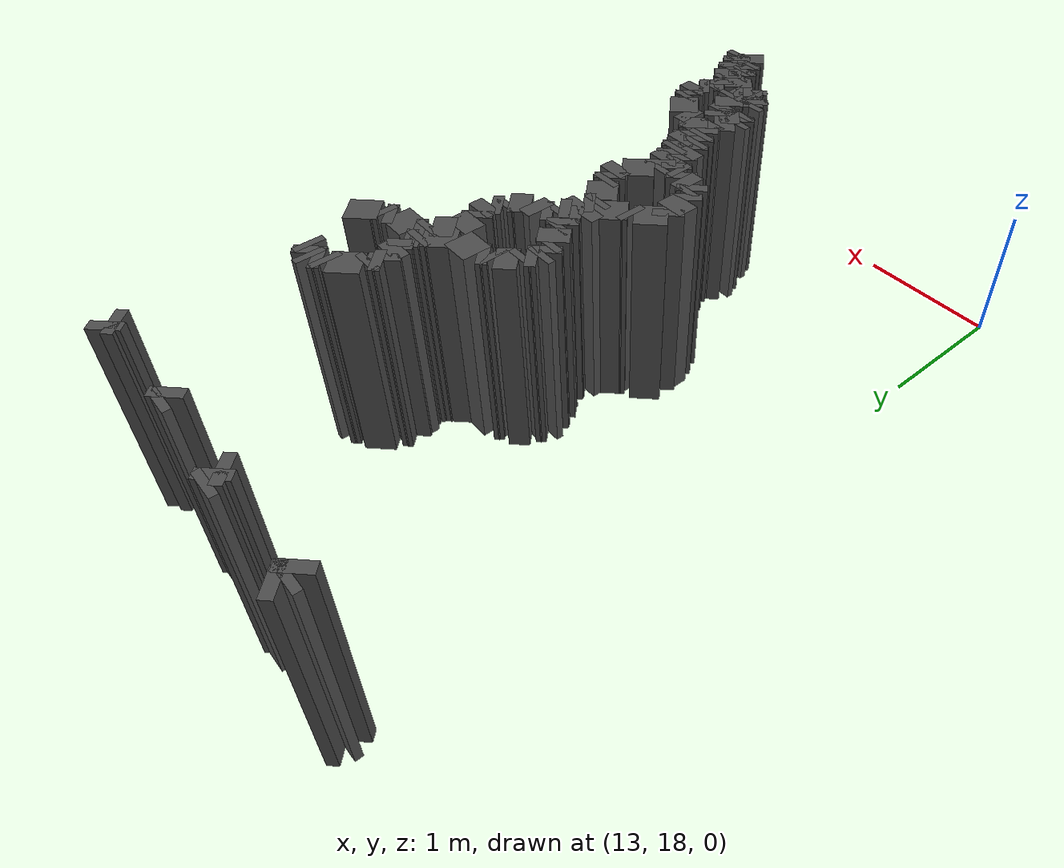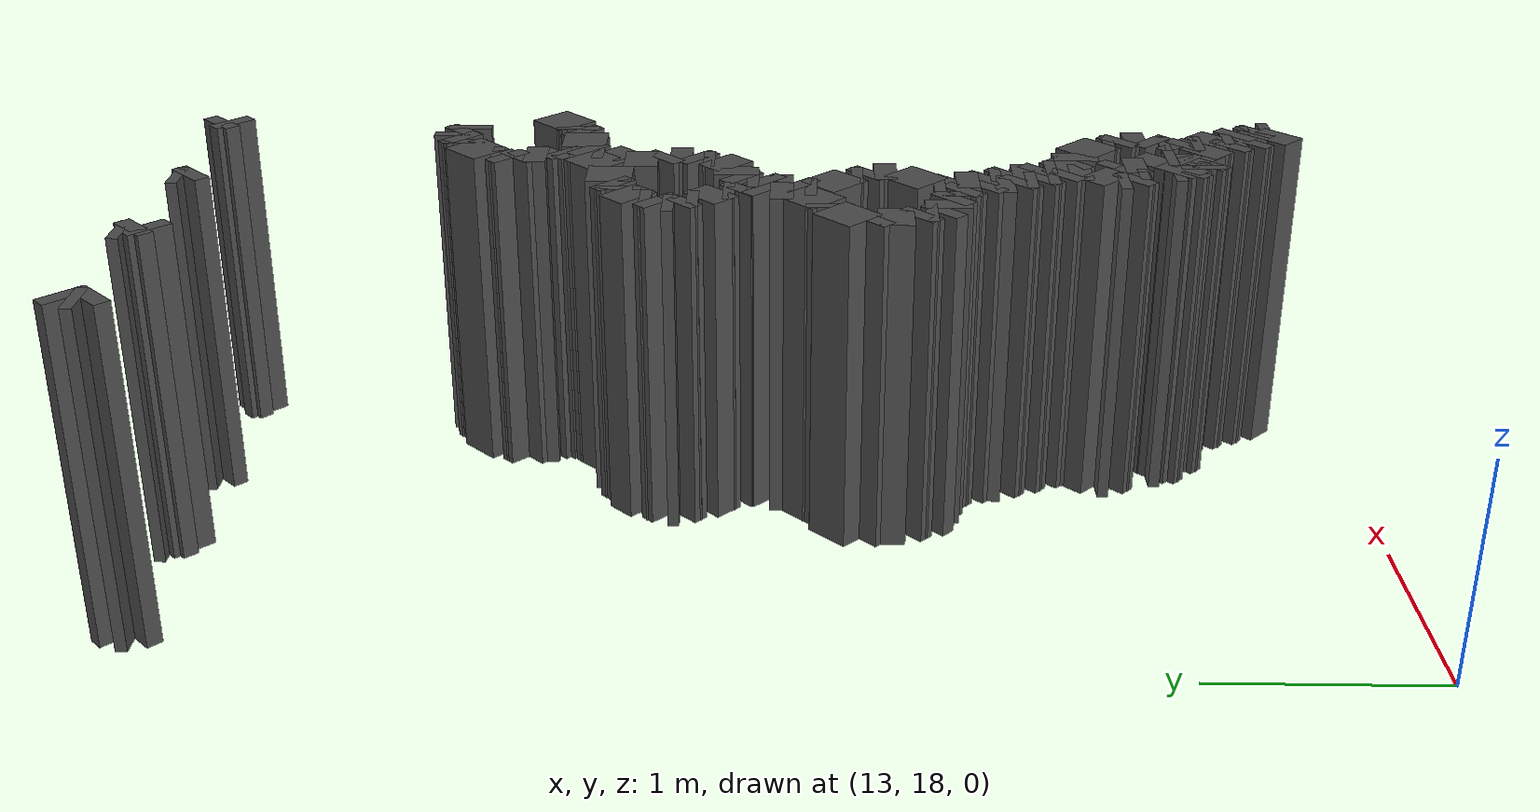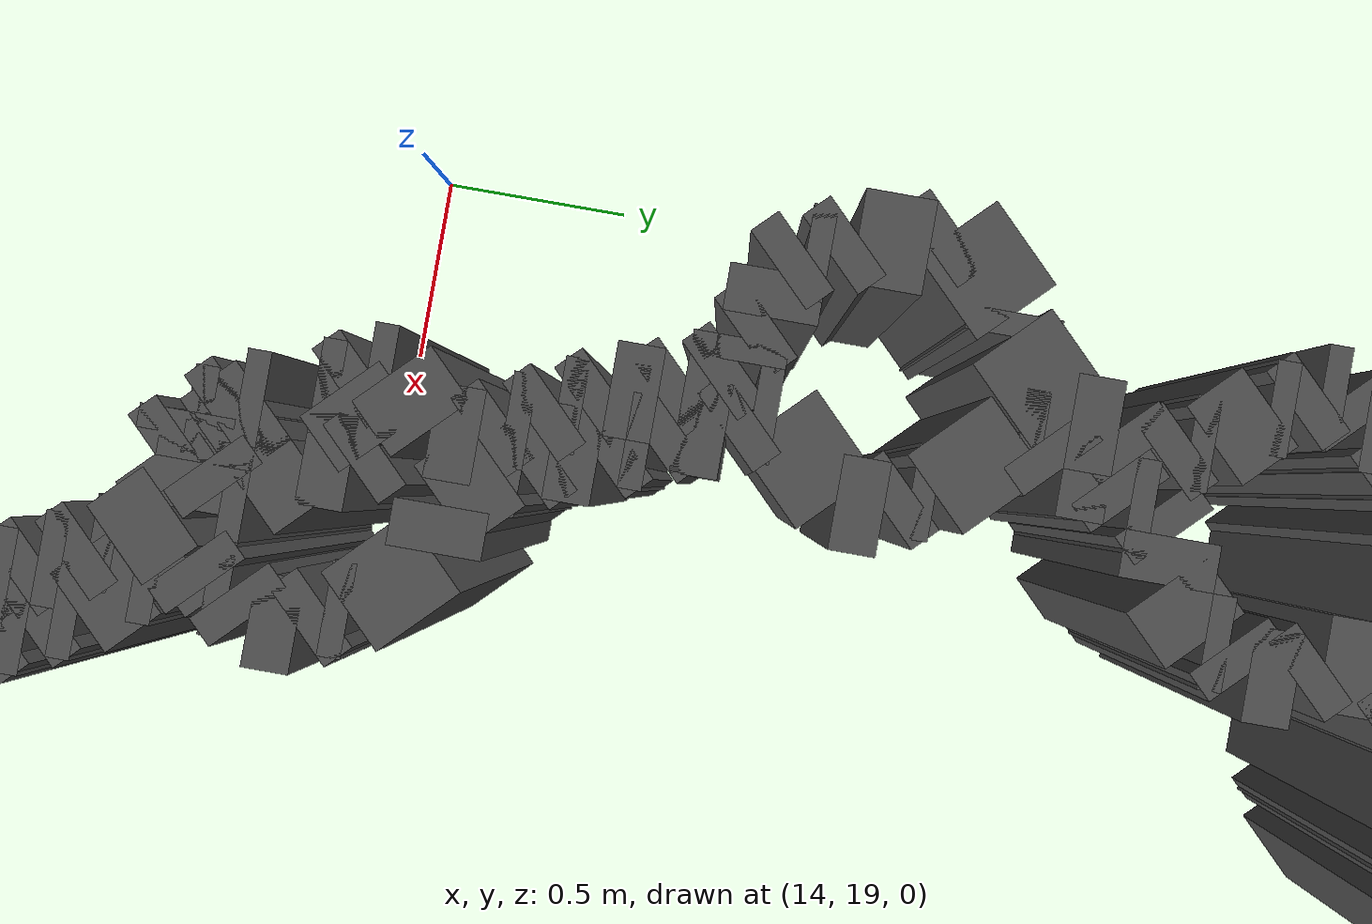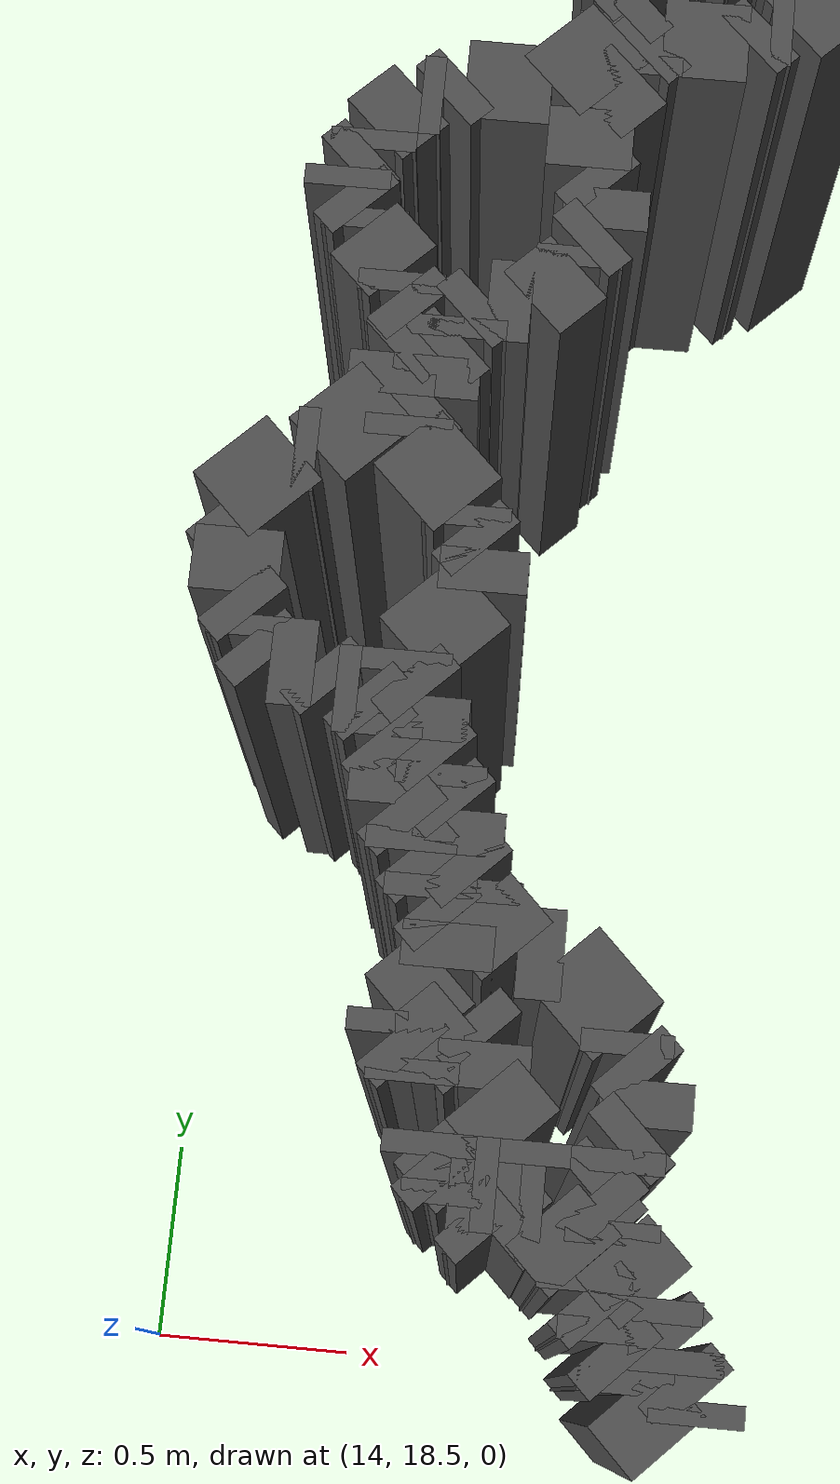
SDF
<sdf version="1.9">
 <model name="generated_walls">
  <static>true</static>
  <link name="wall_83_0">
   <pose>14.625 23.225 0.75 0 0 2.356</pose>
   <collision name="collision"><geometry><box><size>0.071 0.2 1.5</size></box></geometry></collision>
   <visual name="visual">
    <geometry><box><size>0.071 0.2 1.5</size></box></geometry>
    <material><ambient>0.3 0.3 0.3 1</ambient></material>
   </visual>
  </link>
  <link name="wall_83_1">
   <pose>14.600 23.275 0.75 0 0 1.571</pose>
   <collision name="collision"><geometry><box><size>0.050 0.2 1.5</size></box></geometry></collision>
   <visual name="visual">
    <geometry><box><size>0.050 0.2 1.5</size></box></geometry>
    <material><ambient>0.3 0.3 0.3 1</ambient></material>
   </visual>
  </link>
  <link name="wall_83_5">
   <pose>15.325 23.275 0.75 0 0 -0.785</pose>
   <collision name="collision"><geometry><box><size>0.071 0.2 1.5</size></box></geometry></collision>
   <visual name="visual">
    <geometry><box><size>0.071 0.2 1.5</size></box></geometry>
    <material><ambient>0.3 0.3 0.3 1</ambient></material>
   </visual>
  </link>
  <link name="wall_83_6">
   <pose>15.325 23.225 0.75 0 0 -2.356</pose>
   <collision name="collision"><geometry><box><size>0.071 0.2 1.5</size></box></geometry></collision>
   <visual name="visual">
    <geometry><box><size>0.071 0.2 1.5</size></box></geometry>
    <material><ambient>0.3 0.3 0.3 1</ambient></material>
   </visual>
  </link>
  <link name="wall_84_0">
   <pose>13.275 23.225 0.75 0 0 2.356</pose>
   <collision name="collision"><geometry><box><size>0.071 0.2 1.5</size></box></geometry></collision>
   <visual name="visual">
    <geometry><box><size>0.071 0.2 1.5</size></box></geometry>
    <material><ambient>0.3 0.3 0.3 1</ambient></material>
   </visual>
  </link>
  <link name="wall_84_1">
   <pose>13.250 23.275 0.75 0 0 1.571</pose>
   <collision name="collision"><geometry><box><size>0.050 0.2 1.5</size></box></geometry></collision>
   <visual name="visual">
    <geometry><box><size>0.050 0.2 1.5</size></box></geometry>
    <material><ambient>0.3 0.3 0.3 1</ambient></material>
   </visual>
  </link>
  <link name="wall_84_2">
   <pose>13.275 23.325 0.75 0 0 0.785</pose>
   <collision name="collision"><geometry><box><size>0.071 0.2 1.5</size></box></geometry></collision>
   <visual name="visual">
    <geometry><box><size>0.071 0.2 1.5</size></box></geometry>
    <material><ambient>0.3 0.3 0.3 1</ambient></material>
   </visual>
  </link>
  <link name="wall_84_4">
   <pose>13.950 23.325 0.75 0 0 -1.571</pose>
   <collision name="collision"><geometry><box><size>0.050 0.2 1.5</size></box></geometry></collision>
   <visual name="visual">
    <geometry><box><size>0.050 0.2 1.5</size></box></geometry>
    <material><ambient>0.3 0.3 0.3 1</ambient></material>
   </visual>
  </link>
  <link name="wall_84_5">
   <pose>13.975 23.275 0.75 0 0 -0.785</pose>
   <collision name="collision"><geometry><box><size>0.071 0.2 1.5</size></box></geometry></collision>
   <visual name="visual">
    <geometry><box><size>0.071 0.2 1.5</size></box></geometry>
    <material><ambient>0.3 0.3 0.3 1</ambient></material>
   </visual>
  </link>
  <link name="wall_84_6">
   <pose>13.975 23.225 0.75 0 0 -2.356</pose>
   <collision name="collision"><geometry><box><size>0.071 0.2 1.5</size></box></geometry></collision>
   <visual name="visual">
    <geometry><box><size>0.071 0.2 1.5</size></box></geometry>
    <material><ambient>0.3 0.3 0.3 1</ambient></material>
   </visual>
  </link>
  <link name="wall_161_1764">
   <pose>15.200 18.400 0.75 0 0 2.356</pose>
   <collision name="collision"><geometry><box><size>0.141 0.2 1.5</size></box></geometry></collision>
   <visual name="visual">
    <geometry><box><size>0.141 0.2 1.5</size></box></geometry>
    <material><ambient>0.3 0.3 0.3 1</ambient></material>
   </visual>
  </link>
  <link name="wall_161_1765">
   <pose>15.150 18.475 0.75 0 0 1.571</pose>
   <collision name="collision"><geometry><box><size>0.050 0.2 1.5</size></box></geometry></collision>
   <visual name="visual">
    <geometry><box><size>0.050 0.2 1.5</size></box></geometry>
    <material><ambient>0.3 0.3 0.3 1</ambient></material>
   </visual>
  </link>
  <link name="wall_161_1766">
   <pose>15.125 18.525 0.75 0 0 2.356</pose>
   <collision name="collision"><geometry><box><size>0.071 0.2 1.5</size></box></geometry></collision>
   <visual name="visual">
    <geometry><box><size>0.071 0.2 1.5</size></box></geometry>
    <material><ambient>0.3 0.3 0.3 1</ambient></material>
   </visual>
  </link>
  <link name="wall_161_1767">
   <pose>15.100 18.575 0.75 0 0 1.571</pose>
   <collision name="collision"><geometry><box><size>0.050 0.2 1.5</size></box></geometry></collision>
   <visual name="visual">
    <geometry><box><size>0.050 0.2 1.5</size></box></geometry>
    <material><ambient>0.3 0.3 0.3 1</ambient></material>
   </visual>
  </link>
  <link name="wall_161_1768">
   <pose>15.075 18.625 0.75 0 0 2.356</pose>
   <collision name="collision"><geometry><box><size>0.071 0.2 1.5</size></box></geometry></collision>
   <visual name="visual">
    <geometry><box><size>0.071 0.2 1.5</size></box></geometry>
    <material><ambient>0.3 0.3 0.3 1</ambient></material>
   </visual>
  </link>
  <link name="wall_161_1769">
   <pose>15.050 18.675 0.75 0 0 1.571</pose>
   <collision name="collision"><geometry><box><size>0.050 0.2 1.5</size></box></geometry></collision>
   <visual name="visual">
    <geometry><box><size>0.050 0.2 1.5</size></box></geometry>
    <material><ambient>0.3 0.3 0.3 1</ambient></material>
   </visual>
  </link>
  <link name="wall_161_1770">
   <pose>15.000 18.750 0.75 0 0 2.356</pose>
   <collision name="collision"><geometry><box><size>0.141 0.2 1.5</size></box></geometry></collision>
   <visual name="visual">
    <geometry><box><size>0.141 0.2 1.5</size></box></geometry>
    <material><ambient>0.3 0.3 0.3 1</ambient></material>
   </visual>
  </link>
  <link name="wall_161_1771">
   <pose>14.925 18.800 0.75 0 0 3.142</pose>
   <collision name="collision"><geometry><box><size>0.050 0.2 1.5</size></box></geometry></collision>
   <visual name="visual">
    <geometry><box><size>0.050 0.2 1.5</size></box></geometry>
    <material><ambient>0.3 0.3 0.3 1</ambient></material>
   </visual>
  </link>
  <link name="wall_161_1772">
   <pose>14.875 18.775 0.75 0 0 -2.356</pose>
   <collision name="collision"><geometry><box><size>0.071 0.2 1.5</size></box></geometry></collision>
   <visual name="visual">
    <geometry><box><size>0.071 0.2 1.5</size></box></geometry>
    <material><ambient>0.3 0.3 0.3 1</ambient></material>
   </visual>
  </link>
  <link name="wall_161_1773">
   <pose>14.825 18.775 0.75 0 0 2.356</pose>
   <collision name="collision"><geometry><box><size>0.071 0.2 1.5</size></box></geometry></collision>
   <visual name="visual">
    <geometry><box><size>0.071 0.2 1.5</size></box></geometry>
    <material><ambient>0.3 0.3 0.3 1</ambient></material>
   </visual>
  </link>
  <link name="wall_161_1774">
   <pose>14.775 18.800 0.75 0 0 3.142</pose>
   <collision name="collision"><geometry><box><size>0.050 0.2 1.5</size></box></geometry></collision>
   <visual name="visual">
    <geometry><box><size>0.050 0.2 1.5</size></box></geometry>
    <material><ambient>0.3 0.3 0.3 1</ambient></material>
   </visual>
  </link>
  <link name="wall_161_1775">
   <pose>14.750 18.825 0.75 0 0 1.571</pose>
   <collision name="collision"><geometry><box><size>0.050 0.2 1.5</size></box></geometry></collision>
   <visual name="visual">
    <geometry><box><size>0.050 0.2 1.5</size></box></geometry>
    <material><ambient>0.3 0.3 0.3 1</ambient></material>
   </visual>
  </link>
  <link name="wall_161_1776">
   <pose>14.725 18.875 0.75 0 0 2.356</pose>
   <collision name="collision"><geometry><box><size>0.071 0.2 1.5</size></box></geometry></collision>
   <visual name="visual">
    <geometry><box><size>0.071 0.2 1.5</size></box></geometry>
    <material><ambient>0.3 0.3 0.3 1</ambient></material>
   </visual>
  </link>
  <link name="wall_161_1777">
   <pose>14.700 18.925 0.75 0 0 1.571</pose>
   <collision name="collision"><geometry><box><size>0.050 0.2 1.5</size></box></geometry></collision>
   <visual name="visual">
    <geometry><box><size>0.050 0.2 1.5</size></box></geometry>
    <material><ambient>0.3 0.3 0.3 1</ambient></material>
   </visual>
  </link>
  <link name="wall_161_1778">
   <pose>14.750 18.900 0.75 0 0 -0.785</pose>
   <collision name="collision"><geometry><box><size>0.141 0.2 1.5</size></box></geometry></collision>
   <visual name="visual">
    <geometry><box><size>0.141 0.2 1.5</size></box></geometry>
    <material><ambient>0.3 0.3 0.3 1</ambient></material>
   </visual>
  </link>
  <link name="wall_161_1779">
   <pose>14.825 18.850 0.75 0 0 0.000</pose>
   <collision name="collision"><geometry><box><size>0.050 0.2 1.5</size></box></geometry></collision>
   <visual name="visual">
    <geometry><box><size>0.050 0.2 1.5</size></box></geometry>
    <material><ambient>0.3 0.3 0.3 1</ambient></material>
   </visual>
  </link>
  <link name="wall_161_1780">
   <pose>14.875 18.875 0.75 0 0 0.785</pose>
   <collision name="collision"><geometry><box><size>0.071 0.2 1.5</size></box></geometry></collision>
   <visual name="visual">
    <geometry><box><size>0.071 0.2 1.5</size></box></geometry>
    <material><ambient>0.3 0.3 0.3 1</ambient></material>
   </visual>
  </link>
  <link name="wall_161_1781">
   <pose>14.900 18.925 0.75 0 0 1.571</pose>
   <collision name="collision"><geometry><box><size>0.050 0.2 1.5</size></box></geometry></collision>
   <visual name="visual">
    <geometry><box><size>0.050 0.2 1.5</size></box></geometry>
    <material><ambient>0.3 0.3 0.3 1</ambient></material>
   </visual>
  </link>
  <link name="wall_161_1782">
   <pose>14.850 19.000 0.75 0 0 2.356</pose>
   <collision name="collision"><geometry><box><size>0.141 0.2 1.5</size></box></geometry></collision>
   <visual name="visual">
    <geometry><box><size>0.141 0.2 1.5</size></box></geometry>
    <material><ambient>0.3 0.3 0.3 1</ambient></material>
   </visual>
  </link>
  <link name="wall_161_1783">
   <pose>14.800 19.100 0.75 0 0 1.571</pose>
   <collision name="collision"><geometry><box><size>0.100 0.2 1.5</size></box></geometry></collision>
   <visual name="visual">
    <geometry><box><size>0.100 0.2 1.5</size></box></geometry>
    <material><ambient>0.3 0.3 0.3 1</ambient></material>
   </visual>
  </link>
  <link name="wall_161_1784">
   <pose>14.775 19.175 0.75 0 0 2.356</pose>
   <collision name="collision"><geometry><box><size>0.071 0.2 1.5</size></box></geometry></collision>
   <visual name="visual">
    <geometry><box><size>0.071 0.2 1.5</size></box></geometry>
    <material><ambient>0.3 0.3 0.3 1</ambient></material>
   </visual>
  </link>
  <link name="wall_161_1785">
   <pose>14.700 19.150 0.75 0 0 -2.356</pose>
   <collision name="collision"><geometry><box><size>0.141 0.2 1.5</size></box></geometry></collision>
   <visual name="visual">
    <geometry><box><size>0.141 0.2 1.5</size></box></geometry>
    <material><ambient>0.3 0.3 0.3 1</ambient></material>
   </visual>
  </link>
  <link name="wall_161_1786">
   <pose>14.650 19.075 0.75 0 0 -1.571</pose>
   <collision name="collision"><geometry><box><size>0.050 0.2 1.5</size></box></geometry></collision>
   <visual name="visual">
    <geometry><box><size>0.050 0.2 1.5</size></box></geometry>
    <material><ambient>0.3 0.3 0.3 1</ambient></material>
   </visual>
  </link>
  <link name="wall_161_1787">
   <pose>14.650 19.075 0.75 0 0 1.571</pose>
   <collision name="collision"><geometry><box><size>0.050 0.2 1.5</size></box></geometry></collision>
   <visual name="visual">
    <geometry><box><size>0.050 0.2 1.5</size></box></geometry>
    <material><ambient>0.3 0.3 0.3 1</ambient></material>
   </visual>
  </link>
  <link name="wall_161_1788">
   <pose>14.625 19.125 0.75 0 0 2.356</pose>
   <collision name="collision"><geometry><box><size>0.071 0.2 1.5</size></box></geometry></collision>
   <visual name="visual">
    <geometry><box><size>0.071 0.2 1.5</size></box></geometry>
    <material><ambient>0.3 0.3 0.3 1</ambient></material>
   </visual>
  </link>
  <link name="wall_161_1789">
   <pose>14.600 19.175 0.75 0 0 1.571</pose>
   <collision name="collision"><geometry><box><size>0.050 0.2 1.5</size></box></geometry></collision>
   <visual name="visual">
    <geometry><box><size>0.050 0.2 1.5</size></box></geometry>
    <material><ambient>0.3 0.3 0.3 1</ambient></material>
   </visual>
  </link>
  <link name="wall_161_1790">
   <pose>14.650 19.250 0.75 0 0 0.785</pose>
   <collision name="collision"><geometry><box><size>0.141 0.2 1.5</size></box></geometry></collision>
   <visual name="visual">
    <geometry><box><size>0.141 0.2 1.5</size></box></geometry>
    <material><ambient>0.3 0.3 0.3 1</ambient></material>
   </visual>
  </link>
  <link name="wall_161_1791">
   <pose>14.700 19.350 0.75 0 0 1.571</pose>
   <collision name="collision"><geometry><box><size>0.100 0.2 1.5</size></box></geometry></collision>
   <visual name="visual">
    <geometry><box><size>0.100 0.2 1.5</size></box></geometry>
    <material><ambient>0.3 0.3 0.3 1</ambient></material>
   </visual>
  </link>
  <link name="wall_161_1792">
   <pose>14.675 19.425 0.75 0 0 2.356</pose>
   <collision name="collision"><geometry><box><size>0.071 0.2 1.5</size></box></geometry></collision>
   <visual name="visual">
    <geometry><box><size>0.071 0.2 1.5</size></box></geometry>
    <material><ambient>0.3 0.3 0.3 1</ambient></material>
   </visual>
  </link>
  <link name="wall_161_1793">
   <pose>14.650 19.475 0.75 0 0 1.571</pose>
   <collision name="collision"><geometry><box><size>0.050 0.2 1.5</size></box></geometry></collision>
   <visual name="visual">
    <geometry><box><size>0.050 0.2 1.5</size></box></geometry>
    <material><ambient>0.3 0.3 0.3 1</ambient></material>
   </visual>
  </link>
  <link name="wall_161_1794">
   <pose>14.625 19.525 0.75 0 0 2.356</pose>
   <collision name="collision"><geometry><box><size>0.071 0.2 1.5</size></box></geometry></collision>
   <visual name="visual">
    <geometry><box><size>0.071 0.2 1.5</size></box></geometry>
    <material><ambient>0.3 0.3 0.3 1</ambient></material>
   </visual>
  </link>
  <link name="wall_161_1795">
   <pose>14.600 19.575 0.75 0 0 1.571</pose>
   <collision name="collision"><geometry><box><size>0.050 0.2 1.5</size></box></geometry></collision>
   <visual name="visual">
    <geometry><box><size>0.050 0.2 1.5</size></box></geometry>
    <material><ambient>0.3 0.3 0.3 1</ambient></material>
   </visual>
  </link>
  <link name="wall_161_1796">
   <pose>14.575 19.625 0.75 0 0 2.356</pose>
   <collision name="collision"><geometry><box><size>0.071 0.2 1.5</size></box></geometry></collision>
   <visual name="visual">
    <geometry><box><size>0.071 0.2 1.5</size></box></geometry>
    <material><ambient>0.3 0.3 0.3 1</ambient></material>
   </visual>
  </link>
  <link name="wall_161_1797">
   <pose>14.550 19.700 0.75 0 0 1.571</pose>
   <collision name="collision"><geometry><box><size>0.100 0.2 1.5</size></box></geometry></collision>
   <visual name="visual">
    <geometry><box><size>0.100 0.2 1.5</size></box></geometry>
    <material><ambient>0.3 0.3 0.3 1</ambient></material>
   </visual>
  </link>
  <link name="wall_161_1798">
   <pose>14.525 19.775 0.75 0 0 2.356</pose>
   <collision name="collision"><geometry><box><size>0.071 0.2 1.5</size></box></geometry></collision>
   <visual name="visual">
    <geometry><box><size>0.071 0.2 1.5</size></box></geometry>
    <material><ambient>0.3 0.3 0.3 1</ambient></material>
   </visual>
  </link>
  <link name="wall_161_1799">
   <pose>14.500 19.825 0.75 0 0 1.571</pose>
   <collision name="collision"><geometry><box><size>0.050 0.2 1.5</size></box></geometry></collision>
   <visual name="visual">
    <geometry><box><size>0.050 0.2 1.5</size></box></geometry>
    <material><ambient>0.3 0.3 0.3 1</ambient></material>
   </visual>
  </link>
  <link name="wall_161_1800">
   <pose>14.475 19.875 0.75 0 0 2.356</pose>
   <collision name="collision"><geometry><box><size>0.071 0.2 1.5</size></box></geometry></collision>
   <visual name="visual">
    <geometry><box><size>0.071 0.2 1.5</size></box></geometry>
    <material><ambient>0.3 0.3 0.3 1</ambient></material>
   </visual>
  </link>
  <link name="wall_161_1801">
   <pose>14.425 19.900 0.75 0 0 3.142</pose>
   <collision name="collision"><geometry><box><size>0.050 0.2 1.5</size></box></geometry></collision>
   <visual name="visual">
    <geometry><box><size>0.050 0.2 1.5</size></box></geometry>
    <material><ambient>0.3 0.3 0.3 1</ambient></material>
   </visual>
  </link>
  <link name="wall_161_1802">
   <pose>14.375 19.925 0.75 0 0 2.356</pose>
   <collision name="collision"><geometry><box><size>0.071 0.2 1.5</size></box></geometry></collision>
   <visual name="visual">
    <geometry><box><size>0.071 0.2 1.5</size></box></geometry>
    <material><ambient>0.3 0.3 0.3 1</ambient></material>
   </visual>
  </link>
  <link name="wall_161_1803">
   <pose>14.300 19.950 0.75 0 0 3.142</pose>
   <collision name="collision"><geometry><box><size>0.100 0.2 1.5</size></box></geometry></collision>
   <visual name="visual">
    <geometry><box><size>0.100 0.2 1.5</size></box></geometry>
    <material><ambient>0.3 0.3 0.3 1</ambient></material>
   </visual>
  </link>
  <link name="wall_161_1804">
   <pose>14.225 19.975 0.75 0 0 2.356</pose>
   <collision name="collision"><geometry><box><size>0.071 0.2 1.5</size></box></geometry></collision>
   <visual name="visual">
    <geometry><box><size>0.071 0.2 1.5</size></box></geometry>
    <material><ambient>0.3 0.3 0.3 1</ambient></material>
   </visual>
  </link>
  <link name="wall_161_1805">
   <pose>14.200 20.025 0.75 0 0 1.571</pose>
   <collision name="collision"><geometry><box><size>0.050 0.2 1.5</size></box></geometry></collision>
   <visual name="visual">
    <geometry><box><size>0.050 0.2 1.5</size></box></geometry>
    <material><ambient>0.3 0.3 0.3 1</ambient></material>
   </visual>
  </link>
  <link name="wall_161_1806">
   <pose>14.175 20.075 0.75 0 0 2.356</pose>
   <collision name="collision"><geometry><box><size>0.071 0.2 1.5</size></box></geometry></collision>
   <visual name="visual">
    <geometry><box><size>0.071 0.2 1.5</size></box></geometry>
    <material><ambient>0.3 0.3 0.3 1</ambient></material>
   </visual>
  </link>
  <link name="wall_161_1807">
   <pose>14.150 20.175 0.75 0 0 1.571</pose>
   <collision name="collision"><geometry><box><size>0.150 0.2 1.5</size></box></geometry></collision>
   <visual name="visual">
    <geometry><box><size>0.150 0.2 1.5</size></box></geometry>
    <material><ambient>0.3 0.3 0.3 1</ambient></material>
   </visual>
  </link>
  <link name="wall_161_1808">
   <pose>14.125 20.275 0.75 0 0 2.356</pose>
   <collision name="collision"><geometry><box><size>0.071 0.2 1.5</size></box></geometry></collision>
   <visual name="visual">
    <geometry><box><size>0.071 0.2 1.5</size></box></geometry>
    <material><ambient>0.3 0.3 0.3 1</ambient></material>
   </visual>
  </link>
  <link name="wall_161_1809">
   <pose>14.175 20.375 0.75 0 0 0.785</pose>
   <collision name="collision"><geometry><box><size>0.212 0.2 1.5</size></box></geometry></collision>
   <visual name="visual">
    <geometry><box><size>0.212 0.2 1.5</size></box></geometry>
    <material><ambient>0.3 0.3 0.3 1</ambient></material>
   </visual>
  </link>
  <link name="wall_161_1810">
   <pose>14.275 20.450 0.75 0 0 0.000</pose>
   <collision name="collision"><geometry><box><size>0.050 0.2 1.5</size></box></geometry></collision>
   <visual name="visual">
    <geometry><box><size>0.050 0.2 1.5</size></box></geometry>
    <material><ambient>0.3 0.3 0.3 1</ambient></material>
   </visual>
  </link>
  <link name="wall_161_1811">
   <pose>14.375 20.525 0.75 0 0 0.785</pose>
   <collision name="collision"><geometry><box><size>0.212 0.2 1.5</size></box></geometry></collision>
   <visual name="visual">
    <geometry><box><size>0.212 0.2 1.5</size></box></geometry>
    <material><ambient>0.3 0.3 0.3 1</ambient></material>
   </visual>
  </link>
  <link name="wall_161_1812">
   <pose>14.450 20.650 0.75 0 0 1.571</pose>
   <collision name="collision"><geometry><box><size>0.100 0.2 1.5</size></box></geometry></collision>
   <visual name="visual">
    <geometry><box><size>0.100 0.2 1.5</size></box></geometry>
    <material><ambient>0.3 0.3 0.3 1</ambient></material>
   </visual>
  </link>
  <link name="wall_161_1813">
   <pose>14.475 20.725 0.75 0 0 0.785</pose>
   <collision name="collision"><geometry><box><size>0.071 0.2 1.5</size></box></geometry></collision>
   <visual name="visual">
    <geometry><box><size>0.071 0.2 1.5</size></box></geometry>
    <material><ambient>0.3 0.3 0.3 1</ambient></material>
   </visual>
  </link>
  <link name="wall_161_1814">
   <pose>14.500 20.775 0.75 0 0 1.571</pose>
   <collision name="collision"><geometry><box><size>0.050 0.2 1.5</size></box></geometry></collision>
   <visual name="visual">
    <geometry><box><size>0.050 0.2 1.5</size></box></geometry>
    <material><ambient>0.3 0.3 0.3 1</ambient></material>
   </visual>
  </link>
  <link name="wall_161_1815">
   <pose>14.475 20.825 0.75 0 0 2.356</pose>
   <collision name="collision"><geometry><box><size>0.071 0.2 1.5</size></box></geometry></collision>
   <visual name="visual">
    <geometry><box><size>0.071 0.2 1.5</size></box></geometry>
    <material><ambient>0.3 0.3 0.3 1</ambient></material>
   </visual>
  </link>
  <link name="wall_161_1816">
   <pose>14.450 20.875 0.75 0 0 1.571</pose>
   <collision name="collision"><geometry><box><size>0.050 0.2 1.5</size></box></geometry></collision>
   <visual name="visual">
    <geometry><box><size>0.050 0.2 1.5</size></box></geometry>
    <material><ambient>0.3 0.3 0.3 1</ambient></material>
   </visual>
  </link>
  <link name="wall_161_1817">
   <pose>14.400 20.950 0.75 0 0 2.356</pose>
   <collision name="collision"><geometry><box><size>0.141 0.2 1.5</size></box></geometry></collision>
   <visual name="visual">
    <geometry><box><size>0.141 0.2 1.5</size></box></geometry>
    <material><ambient>0.3 0.3 0.3 1</ambient></material>
   </visual>
  </link>
  <link name="wall_161_1818">
   <pose>14.350 21.025 0.75 0 0 1.571</pose>
   <collision name="collision"><geometry><box><size>0.050 0.2 1.5</size></box></geometry></collision>
   <visual name="visual">
    <geometry><box><size>0.050 0.2 1.5</size></box></geometry>
    <material><ambient>0.3 0.3 0.3 1</ambient></material>
   </visual>
  </link>
  <link name="wall_161_1819">
   <pose>14.325 21.075 0.75 0 0 2.356</pose>
   <collision name="collision"><geometry><box><size>0.071 0.2 1.5</size></box></geometry></collision>
   <visual name="visual">
    <geometry><box><size>0.071 0.2 1.5</size></box></geometry>
    <material><ambient>0.3 0.3 0.3 1</ambient></material>
   </visual>
  </link>
  <link name="wall_161_1820">
   <pose>14.300 21.125 0.75 0 0 1.571</pose>
   <collision name="collision"><geometry><box><size>0.050 0.2 1.5</size></box></geometry></collision>
   <visual name="visual">
    <geometry><box><size>0.050 0.2 1.5</size></box></geometry>
    <material><ambient>0.3 0.3 0.3 1</ambient></material>
   </visual>
  </link>
  <link name="wall_161_1821">
   <pose>14.325 21.175 0.75 0 0 0.785</pose>
   <collision name="collision"><geometry><box><size>0.071 0.2 1.5</size></box></geometry></collision>
   <visual name="visual">
    <geometry><box><size>0.071 0.2 1.5</size></box></geometry>
    <material><ambient>0.3 0.3 0.3 1</ambient></material>
   </visual>
  </link>
  <link name="wall_161_1822">
   <pose>14.350 21.225 0.75 0 0 1.571</pose>
   <collision name="collision"><geometry><box><size>0.050 0.2 1.5</size></box></geometry></collision>
   <visual name="visual">
    <geometry><box><size>0.050 0.2 1.5</size></box></geometry>
    <material><ambient>0.3 0.3 0.3 1</ambient></material>
   </visual>
  </link>
  <link name="wall_161_1823">
   <pose>14.400 21.300 0.75 0 0 0.785</pose>
   <collision name="collision"><geometry><box><size>0.141 0.2 1.5</size></box></geometry></collision>
   <visual name="visual">
    <geometry><box><size>0.141 0.2 1.5</size></box></geometry>
    <material><ambient>0.3 0.3 0.3 1</ambient></material>
   </visual>
  </link>
  <link name="wall_161_1824">
   <pose>14.475 21.350 0.75 0 0 0.000</pose>
   <collision name="collision"><geometry><box><size>0.050 0.2 1.5</size></box></geometry></collision>
   <visual name="visual">
    <geometry><box><size>0.050 0.2 1.5</size></box></geometry>
    <material><ambient>0.3 0.3 0.3 1</ambient></material>
   </visual>
  </link>
  <link name="wall_161_1825">
   <pose>14.525 21.375 0.75 0 0 0.785</pose>
   <collision name="collision"><geometry><box><size>0.071 0.2 1.5</size></box></geometry></collision>
   <visual name="visual">
    <geometry><box><size>0.071 0.2 1.5</size></box></geometry>
    <material><ambient>0.3 0.3 0.3 1</ambient></material>
   </visual>
  </link>
  <link name="wall_161_1826">
   <pose>14.650 21.400 0.75 0 0 0.000</pose>
   <collision name="collision"><geometry><box><size>0.200 0.2 1.5</size></box></geometry></collision>
   <visual name="visual">
    <geometry><box><size>0.200 0.2 1.5</size></box></geometry>
    <material><ambient>0.3 0.3 0.3 1</ambient></material>
   </visual>
  </link>
  <link name="wall_161_1827">
   <pose>14.825 21.475 0.75 0 0 0.785</pose>
   <collision name="collision"><geometry><box><size>0.212 0.2 1.5</size></box></geometry></collision>
   <visual name="visual">
    <geometry><box><size>0.212 0.2 1.5</size></box></geometry>
    <material><ambient>0.3 0.3 0.3 1</ambient></material>
   </visual>
  </link>
  <link name="wall_161_1828">
   <pose>14.900 21.575 0.75 0 0 1.571</pose>
   <collision name="collision"><geometry><box><size>0.050 0.2 1.5</size></box></geometry></collision>
   <visual name="visual">
    <geometry><box><size>0.050 0.2 1.5</size></box></geometry>
    <material><ambient>0.3 0.3 0.3 1</ambient></material>
   </visual>
  </link>
  <link name="wall_161_1829">
   <pose>14.925 21.625 0.75 0 0 0.785</pose>
   <collision name="collision"><geometry><box><size>0.071 0.2 1.5</size></box></geometry></collision>
   <visual name="visual">
    <geometry><box><size>0.071 0.2 1.5</size></box></geometry>
    <material><ambient>0.3 0.3 0.3 1</ambient></material>
   </visual>
  </link>
  <link name="wall_161_1830">
   <pose>14.925 21.675 0.75 0 0 2.356</pose>
   <collision name="collision"><geometry><box><size>0.071 0.2 1.5</size></box></geometry></collision>
   <visual name="visual">
    <geometry><box><size>0.071 0.2 1.5</size></box></geometry>
    <material><ambient>0.3 0.3 0.3 1</ambient></material>
   </visual>
  </link>
  <link name="wall_161_1831">
   <pose>14.900 21.750 0.75 0 0 1.571</pose>
   <collision name="collision"><geometry><box><size>0.100 0.2 1.5</size></box></geometry></collision>
   <visual name="visual">
    <geometry><box><size>0.100 0.2 1.5</size></box></geometry>
    <material><ambient>0.3 0.3 0.3 1</ambient></material>
   </visual>
  </link>
  <link name="wall_161_1832">
   <pose>14.875 21.825 0.75 0 0 2.356</pose>
   <collision name="collision"><geometry><box><size>0.071 0.2 1.5</size></box></geometry></collision>
   <visual name="visual">
    <geometry><box><size>0.071 0.2 1.5</size></box></geometry>
    <material><ambient>0.3 0.3 0.3 1</ambient></material>
   </visual>
  </link>
  <link name="wall_161_1833">
   <pose>14.875 21.875 0.75 0 0 0.785</pose>
   <collision name="collision"><geometry><box><size>0.071 0.2 1.5</size></box></geometry></collision>
   <visual name="visual">
    <geometry><box><size>0.071 0.2 1.5</size></box></geometry>
    <material><ambient>0.3 0.3 0.3 1</ambient></material>
   </visual>
  </link>
  <link name="wall_161_1834">
   <pose>14.900 21.925 0.75 0 0 1.571</pose>
   <collision name="collision"><geometry><box><size>0.050 0.2 1.5</size></box></geometry></collision>
   <visual name="visual">
    <geometry><box><size>0.050 0.2 1.5</size></box></geometry>
    <material><ambient>0.3 0.3 0.3 1</ambient></material>
   </visual>
  </link>
  <link name="wall_161_1835">
   <pose>14.975 22.025 0.75 0 0 0.785</pose>
   <collision name="collision"><geometry><box><size>0.212 0.2 1.5</size></box></geometry></collision>
   <visual name="visual">
    <geometry><box><size>0.212 0.2 1.5</size></box></geometry>
    <material><ambient>0.3 0.3 0.3 1</ambient></material>
   </visual>
  </link>
  <link name="wall_161_1836">
   <pose>15.075 22.100 0.75 0 0 0.000</pose>
   <collision name="collision"><geometry><box><size>0.050 0.2 1.5</size></box></geometry></collision>
   <visual name="visual">
    <geometry><box><size>0.050 0.2 1.5</size></box></geometry>
    <material><ambient>0.3 0.3 0.3 1</ambient></material>
   </visual>
  </link>
  <link name="wall_161_1837">
   <pose>15.125 22.125 0.75 0 0 0.785</pose>
   <collision name="collision"><geometry><box><size>0.071 0.2 1.5</size></box></geometry></collision>
   <visual name="visual">
    <geometry><box><size>0.071 0.2 1.5</size></box></geometry>
    <material><ambient>0.3 0.3 0.3 1</ambient></material>
   </visual>
  </link>
  <link name="wall_161_1838">
   <pose>15.175 22.150 0.75 0 0 0.000</pose>
   <collision name="collision"><geometry><box><size>0.050 0.2 1.5</size></box></geometry></collision>
   <visual name="visual">
    <geometry><box><size>0.050 0.2 1.5</size></box></geometry>
    <material><ambient>0.3 0.3 0.3 1</ambient></material>
   </visual>
  </link>
  <link name="wall_161_1839">
   <pose>15.225 22.125 0.75 0 0 -0.785</pose>
   <collision name="collision"><geometry><box><size>0.071 0.2 1.5</size></box></geometry></collision>
   <visual name="visual">
    <geometry><box><size>0.071 0.2 1.5</size></box></geometry>
    <material><ambient>0.3 0.3 0.3 1</ambient></material>
   </visual>
  </link>
  <link name="wall_161_1840">
   <pose>15.275 22.100 0.75 0 0 0.000</pose>
   <collision name="collision"><geometry><box><size>0.050 0.2 1.5</size></box></geometry></collision>
   <visual name="visual">
    <geometry><box><size>0.050 0.2 1.5</size></box></geometry>
    <material><ambient>0.3 0.3 0.3 1</ambient></material>
   </visual>
  </link>
  <link name="wall_161_2344">
   <pose>15.375 21.675 0.75 0 0 -2.356</pose>
   <collision name="collision"><geometry><box><size>0.212 0.2 1.5</size></box></geometry></collision>
   <visual name="visual">
    <geometry><box><size>0.212 0.2 1.5</size></box></geometry>
    <material><ambient>0.3 0.3 0.3 1</ambient></material>
   </visual>
  </link>
  <link name="wall_161_2345">
   <pose>15.275 21.600 0.75 0 0 3.142</pose>
   <collision name="collision"><geometry><box><size>0.050 0.2 1.5</size></box></geometry></collision>
   <visual name="visual">
    <geometry><box><size>0.050 0.2 1.5</size></box></geometry>
    <material><ambient>0.3 0.3 0.3 1</ambient></material>
   </visual>
  </link>
  <link name="wall_161_2346">
   <pose>15.225 21.575 0.75 0 0 -2.356</pose>
   <collision name="collision"><geometry><box><size>0.071 0.2 1.5</size></box></geometry></collision>
   <visual name="visual">
    <geometry><box><size>0.071 0.2 1.5</size></box></geometry>
    <material><ambient>0.3 0.3 0.3 1</ambient></material>
   </visual>
  </link>
  <link name="wall_161_2347">
   <pose>15.100 21.550 0.75 0 0 3.142</pose>
   <collision name="collision"><geometry><box><size>0.200 0.2 1.5</size></box></geometry></collision>
   <visual name="visual">
    <geometry><box><size>0.200 0.2 1.5</size></box></geometry>
    <material><ambient>0.3 0.3 0.3 1</ambient></material>
   </visual>
  </link>
  <link name="wall_161_2348">
   <pose>14.975 21.525 0.75 0 0 -2.356</pose>
   <collision name="collision"><geometry><box><size>0.071 0.2 1.5</size></box></geometry></collision>
   <visual name="visual">
    <geometry><box><size>0.071 0.2 1.5</size></box></geometry>
    <material><ambient>0.3 0.3 0.3 1</ambient></material>
   </visual>
  </link>
  <link name="wall_161_2349">
   <pose>14.950 21.475 0.75 0 0 -1.571</pose>
   <collision name="collision"><geometry><box><size>0.050 0.2 1.5</size></box></geometry></collision>
   <visual name="visual">
    <geometry><box><size>0.050 0.2 1.5</size></box></geometry>
    <material><ambient>0.3 0.3 0.3 1</ambient></material>
   </visual>
  </link>
  <link name="wall_161_2350">
   <pose>14.900 21.400 0.75 0 0 -2.356</pose>
   <collision name="collision"><geometry><box><size>0.141 0.2 1.5</size></box></geometry></collision>
   <visual name="visual">
    <geometry><box><size>0.141 0.2 1.5</size></box></geometry>
    <material><ambient>0.3 0.3 0.3 1</ambient></material>
   </visual>
  </link>
  <link name="wall_161_2351">
   <pose>14.850 21.275 0.75 0 0 -1.571</pose>
   <collision name="collision"><geometry><box><size>0.150 0.2 1.5</size></box></geometry></collision>
   <visual name="visual">
    <geometry><box><size>0.150 0.2 1.5</size></box></geometry>
    <material><ambient>0.3 0.3 0.3 1</ambient></material>
   </visual>
  </link>
  <link name="wall_161_2352">
   <pose>14.875 21.175 0.75 0 0 -0.785</pose>
   <collision name="collision"><geometry><box><size>0.071 0.2 1.5</size></box></geometry></collision>
   <visual name="visual">
    <geometry><box><size>0.071 0.2 1.5</size></box></geometry>
    <material><ambient>0.3 0.3 0.3 1</ambient></material>
   </visual>
  </link>
  <link name="wall_161_2353">
   <pose>14.900 21.100 0.75 0 0 -1.571</pose>
   <collision name="collision"><geometry><box><size>0.100 0.2 1.5</size></box></geometry></collision>
   <visual name="visual">
    <geometry><box><size>0.100 0.2 1.5</size></box></geometry>
    <material><ambient>0.3 0.3 0.3 1</ambient></material>
   </visual>
  </link>
  <link name="wall_161_2354">
   <pose>14.875 21.025 0.75 0 0 -2.356</pose>
   <collision name="collision"><geometry><box><size>0.071 0.2 1.5</size></box></geometry></collision>
   <visual name="visual">
    <geometry><box><size>0.071 0.2 1.5</size></box></geometry>
    <material><ambient>0.3 0.3 0.3 1</ambient></material>
   </visual>
  </link>
  <link name="wall_161_2355">
   <pose>14.850 20.975 0.75 0 0 -1.571</pose>
   <collision name="collision"><geometry><box><size>0.050 0.2 1.5</size></box></geometry></collision>
   <visual name="visual">
    <geometry><box><size>0.050 0.2 1.5</size></box></geometry>
    <material><ambient>0.3 0.3 0.3 1</ambient></material>
   </visual>
  </link>
  <link name="wall_161_2356">
   <pose>14.800 20.900 0.75 0 0 -2.356</pose>
   <collision name="collision"><geometry><box><size>0.141 0.2 1.5</size></box></geometry></collision>
   <visual name="visual">
    <geometry><box><size>0.141 0.2 1.5</size></box></geometry>
    <material><ambient>0.3 0.3 0.3 1</ambient></material>
   </visual>
  </link>
  <link name="wall_161_2357">
   <pose>14.700 20.850 0.75 0 0 3.142</pose>
   <collision name="collision"><geometry><box><size>0.100 0.2 1.5</size></box></geometry></collision>
   <visual name="visual">
    <geometry><box><size>0.100 0.2 1.5</size></box></geometry>
    <material><ambient>0.3 0.3 0.3 1</ambient></material>
   </visual>
  </link>
  <link name="wall_161_2358">
   <pose>14.625 20.825 0.75 0 0 -2.356</pose>
   <collision name="collision"><geometry><box><size>0.071 0.2 1.5</size></box></geometry></collision>
   <visual name="visual">
    <geometry><box><size>0.071 0.2 1.5</size></box></geometry>
    <material><ambient>0.3 0.3 0.3 1</ambient></material>
   </visual>
  </link>
  <link name="wall_161_2359">
   <pose>14.600 20.775 0.75 0 0 -1.571</pose>
   <collision name="collision"><geometry><box><size>0.050 0.2 1.5</size></box></geometry></collision>
   <visual name="visual">
    <geometry><box><size>0.050 0.2 1.5</size></box></geometry>
    <material><ambient>0.3 0.3 0.3 1</ambient></material>
   </visual>
  </link>
  <link name="wall_161_2360">
   <pose>14.575 20.725 0.75 0 0 -2.356</pose>
   <collision name="collision"><geometry><box><size>0.071 0.2 1.5</size></box></geometry></collision>
   <visual name="visual">
    <geometry><box><size>0.071 0.2 1.5</size></box></geometry>
    <material><ambient>0.3 0.3 0.3 1</ambient></material>
   </visual>
  </link>
  <link name="wall_161_2361">
   <pose>14.550 20.650 0.75 0 0 -1.571</pose>
   <collision name="collision"><geometry><box><size>0.100 0.2 1.5</size></box></geometry></collision>
   <visual name="visual">
    <geometry><box><size>0.100 0.2 1.5</size></box></geometry>
    <material><ambient>0.3 0.3 0.3 1</ambient></material>
   </visual>
  </link>
  <link name="wall_161_2362">
   <pose>14.525 20.575 0.75 0 0 -2.356</pose>
   <collision name="collision"><geometry><box><size>0.071 0.2 1.5</size></box></geometry></collision>
   <visual name="visual">
    <geometry><box><size>0.071 0.2 1.5</size></box></geometry>
    <material><ambient>0.3 0.3 0.3 1</ambient></material>
   </visual>
  </link>
  <link name="wall_161_2363">
   <pose>14.500 20.525 0.75 0 0 -1.571</pose>
   <collision name="collision"><geometry><box><size>0.050 0.2 1.5</size></box></geometry></collision>
   <visual name="visual">
    <geometry><box><size>0.050 0.2 1.5</size></box></geometry>
    <material><ambient>0.3 0.3 0.3 1</ambient></material>
   </visual>
  </link>
  <link name="wall_161_2364">
   <pose>14.575 20.425 0.75 0 0 -0.785</pose>
   <collision name="collision"><geometry><box><size>0.212 0.2 1.5</size></box></geometry></collision>
   <visual name="visual">
    <geometry><box><size>0.212 0.2 1.5</size></box></geometry>
    <material><ambient>0.3 0.3 0.3 1</ambient></material>
   </visual>
  </link>
  <link name="wall_161_2365">
   <pose>14.650 20.325 0.75 0 0 -1.571</pose>
   <collision name="collision"><geometry><box><size>0.050 0.2 1.5</size></box></geometry></collision>
   <visual name="visual">
    <geometry><box><size>0.050 0.2 1.5</size></box></geometry>
    <material><ambient>0.3 0.3 0.3 1</ambient></material>
   </visual>
  </link>
  <link name="wall_161_2366">
   <pose>14.675 20.275 0.75 0 0 -0.785</pose>
   <collision name="collision"><geometry><box><size>0.071 0.2 1.5</size></box></geometry></collision>
   <visual name="visual">
    <geometry><box><size>0.071 0.2 1.5</size></box></geometry>
    <material><ambient>0.3 0.3 0.3 1</ambient></material>
   </visual>
  </link>
  <link name="wall_161_2367">
   <pose>14.700 20.200 0.75 0 0 -1.571</pose>
   <collision name="collision"><geometry><box><size>0.100 0.2 1.5</size></box></geometry></collision>
   <visual name="visual">
    <geometry><box><size>0.100 0.2 1.5</size></box></geometry>
    <material><ambient>0.3 0.3 0.3 1</ambient></material>
   </visual>
  </link>
  <link name="wall_161_2368">
   <pose>14.625 20.075 0.75 0 0 -2.356</pose>
   <collision name="collision"><geometry><box><size>0.212 0.2 1.5</size></box></geometry></collision>
   <visual name="visual">
    <geometry><box><size>0.212 0.2 1.5</size></box></geometry>
    <material><ambient>0.3 0.3 0.3 1</ambient></material>
   </visual>
  </link>
  <link name="wall_161_2369">
   <pose>14.550 19.975 0.75 0 0 -1.571</pose>
   <collision name="collision"><geometry><box><size>0.050 0.2 1.5</size></box></geometry></collision>
   <visual name="visual">
    <geometry><box><size>0.050 0.2 1.5</size></box></geometry>
    <material><ambient>0.3 0.3 0.3 1</ambient></material>
   </visual>
  </link>
  <link name="wall_161_2370">
   <pose>14.575 19.925 0.75 0 0 -0.785</pose>
   <collision name="collision"><geometry><box><size>0.071 0.2 1.5</size></box></geometry></collision>
   <visual name="visual">
    <geometry><box><size>0.071 0.2 1.5</size></box></geometry>
    <material><ambient>0.3 0.3 0.3 1</ambient></material>
   </visual>
  </link>
  <link name="wall_161_2371">
   <pose>14.600 19.850 0.75 0 0 -1.571</pose>
   <collision name="collision"><geometry><box><size>0.100 0.2 1.5</size></box></geometry></collision>
   <visual name="visual">
    <geometry><box><size>0.100 0.2 1.5</size></box></geometry>
    <material><ambient>0.3 0.3 0.3 1</ambient></material>
   </visual>
  </link>
  <link name="wall_161_2372">
   <pose>14.625 19.775 0.75 0 0 -0.785</pose>
   <collision name="collision"><geometry><box><size>0.071 0.2 1.5</size></box></geometry></collision>
   <visual name="visual">
    <geometry><box><size>0.071 0.2 1.5</size></box></geometry>
    <material><ambient>0.3 0.3 0.3 1</ambient></material>
   </visual>
  </link>
  <link name="wall_161_2373">
   <pose>14.650 19.725 0.75 0 0 -1.571</pose>
   <collision name="collision"><geometry><box><size>0.050 0.2 1.5</size></box></geometry></collision>
   <visual name="visual">
    <geometry><box><size>0.050 0.2 1.5</size></box></geometry>
    <material><ambient>0.3 0.3 0.3 1</ambient></material>
   </visual>
  </link>
  <link name="wall_161_2374">
   <pose>14.675 19.675 0.75 0 0 -0.785</pose>
   <collision name="collision"><geometry><box><size>0.071 0.2 1.5</size></box></geometry></collision>
   <visual name="visual">
    <geometry><box><size>0.071 0.2 1.5</size></box></geometry>
    <material><ambient>0.3 0.3 0.3 1</ambient></material>
   </visual>
  </link>
  <link name="wall_161_2375">
   <pose>14.700 19.600 0.75 0 0 -1.571</pose>
   <collision name="collision"><geometry><box><size>0.100 0.2 1.5</size></box></geometry></collision>
   <visual name="visual">
    <geometry><box><size>0.100 0.2 1.5</size></box></geometry>
    <material><ambient>0.3 0.3 0.3 1</ambient></material>
   </visual>
  </link>
  <link name="wall_161_2376">
   <pose>14.725 19.525 0.75 0 0 -0.785</pose>
   <collision name="collision"><geometry><box><size>0.071 0.2 1.5</size></box></geometry></collision>
   <visual name="visual">
    <geometry><box><size>0.071 0.2 1.5</size></box></geometry>
    <material><ambient>0.3 0.3 0.3 1</ambient></material>
   </visual>
  </link>
  <link name="wall_161_2377">
   <pose>14.750 19.475 0.75 0 0 -1.571</pose>
   <collision name="collision"><geometry><box><size>0.050 0.2 1.5</size></box></geometry></collision>
   <visual name="visual">
    <geometry><box><size>0.050 0.2 1.5</size></box></geometry>
    <material><ambient>0.3 0.3 0.3 1</ambient></material>
   </visual>
  </link>
  <link name="wall_161_2378">
   <pose>14.800 19.400 0.75 0 0 -0.785</pose>
   <collision name="collision"><geometry><box><size>0.141 0.2 1.5</size></box></geometry></collision>
   <visual name="visual">
    <geometry><box><size>0.141 0.2 1.5</size></box></geometry>
    <material><ambient>0.3 0.3 0.3 1</ambient></material>
   </visual>
  </link>
  <link name="wall_161_2379">
   <pose>14.900 19.350 0.75 0 0 0.000</pose>
   <collision name="collision"><geometry><box><size>0.100 0.2 1.5</size></box></geometry></collision>
   <visual name="visual">
    <geometry><box><size>0.100 0.2 1.5</size></box></geometry>
    <material><ambient>0.3 0.3 0.3 1</ambient></material>
   </visual>
  </link>
  <link name="wall_161_2380">
   <pose>15.025 19.275 0.75 0 0 -0.785</pose>
   <collision name="collision"><geometry><box><size>0.212 0.2 1.5</size></box></geometry></collision>
   <visual name="visual">
    <geometry><box><size>0.212 0.2 1.5</size></box></geometry>
    <material><ambient>0.3 0.3 0.3 1</ambient></material>
   </visual>
  </link>
  <link name="wall_161_2381">
   <pose>15.100 19.175 0.75 0 0 -1.571</pose>
   <collision name="collision"><geometry><box><size>0.050 0.2 1.5</size></box></geometry></collision>
   <visual name="visual">
    <geometry><box><size>0.050 0.2 1.5</size></box></geometry>
    <material><ambient>0.3 0.3 0.3 1</ambient></material>
   </visual>
  </link>
  <link name="wall_161_2382">
   <pose>15.125 19.125 0.75 0 0 -0.785</pose>
   <collision name="collision"><geometry><box><size>0.071 0.2 1.5</size></box></geometry></collision>
   <visual name="visual">
    <geometry><box><size>0.071 0.2 1.5</size></box></geometry>
    <material><ambient>0.3 0.3 0.3 1</ambient></material>
   </visual>
  </link>
  <link name="wall_161_2383">
   <pose>15.150 19.050 0.75 0 0 -1.571</pose>
   <collision name="collision"><geometry><box><size>0.100 0.2 1.5</size></box></geometry></collision>
   <visual name="visual">
    <geometry><box><size>0.100 0.2 1.5</size></box></geometry>
    <material><ambient>0.3 0.3 0.3 1</ambient></material>
   </visual>
  </link>
  <link name="wall_161_2384">
   <pose>15.125 18.975 0.75 0 0 -2.356</pose>
   <collision name="collision"><geometry><box><size>0.071 0.2 1.5</size></box></geometry></collision>
   <visual name="visual">
    <geometry><box><size>0.071 0.2 1.5</size></box></geometry>
    <material><ambient>0.3 0.3 0.3 1</ambient></material>
   </visual>
  </link>
  <link name="wall_161_2385">
   <pose>15.100 18.925 0.75 0 0 -1.571</pose>
   <collision name="collision"><geometry><box><size>0.050 0.2 1.5</size></box></geometry></collision>
   <visual name="visual">
    <geometry><box><size>0.050 0.2 1.5</size></box></geometry>
    <material><ambient>0.3 0.3 0.3 1</ambient></material>
   </visual>
  </link>
  <link name="wall_161_2386">
   <pose>15.075 18.875 0.75 0 0 -2.356</pose>
   <collision name="collision"><geometry><box><size>0.071 0.2 1.5</size></box></geometry></collision>
   <visual name="visual">
    <geometry><box><size>0.071 0.2 1.5</size></box></geometry>
    <material><ambient>0.3 0.3 0.3 1</ambient></material>
   </visual>
  </link>
  <link name="wall_161_2387">
   <pose>15.075 18.825 0.75 0 0 -0.785</pose>
   <collision name="collision"><geometry><box><size>0.071 0.2 1.5</size></box></geometry></collision>
   <visual name="visual">
    <geometry><box><size>0.071 0.2 1.5</size></box></geometry>
    <material><ambient>0.3 0.3 0.3 1</ambient></material>
   </visual>
  </link>
  <link name="wall_161_2388">
   <pose>15.100 18.775 0.75 0 0 -1.571</pose>
   <collision name="collision"><geometry><box><size>0.050 0.2 1.5</size></box></geometry></collision>
   <visual name="visual">
    <geometry><box><size>0.050 0.2 1.5</size></box></geometry>
    <material><ambient>0.3 0.3 0.3 1</ambient></material>
   </visual>
  </link>
  <link name="wall_161_2389">
   <pose>15.150 18.700 0.75 0 0 -0.785</pose>
   <collision name="collision"><geometry><box><size>0.141 0.2 1.5</size></box></geometry></collision>
   <visual name="visual">
    <geometry><box><size>0.141 0.2 1.5</size></box></geometry>
    <material><ambient>0.3 0.3 0.3 1</ambient></material>
   </visual>
  </link>
  <link name="wall_161_2390">
   <pose>15.200 18.625 0.75 0 0 -1.571</pose>
   <collision name="collision"><geometry><box><size>0.050 0.2 1.5</size></box></geometry></collision>
   <visual name="visual">
    <geometry><box><size>0.050 0.2 1.5</size></box></geometry>
    <material><ambient>0.3 0.3 0.3 1</ambient></material>
   </visual>
  </link>
  <link name="wall_161_2391">
   <pose>15.225 18.575 0.75 0 0 -0.785</pose>
   <collision name="collision"><geometry><box><size>0.071 0.2 1.5</size></box></geometry></collision>
   <visual name="visual">
    <geometry><box><size>0.071 0.2 1.5</size></box></geometry>
    <material><ambient>0.3 0.3 0.3 1</ambient></material>
   </visual>
  </link>
  <link name="wall_161_2392">
   <pose>15.250 18.525 0.75 0 0 -1.571</pose>
   <collision name="collision"><geometry><box><size>0.050 0.2 1.5</size></box></geometry></collision>
   <visual name="visual">
    <geometry><box><size>0.050 0.2 1.5</size></box></geometry>
    <material><ambient>0.3 0.3 0.3 1</ambient></material>
   </visual>
  </link>
  <link name="wall_161_2393">
   <pose>15.275 18.475 0.75 0 0 -0.785</pose>
   <collision name="collision"><geometry><box><size>0.071 0.2 1.5</size></box></geometry></collision>
   <visual name="visual">
    <geometry><box><size>0.071 0.2 1.5</size></box></geometry>
    <material><ambient>0.3 0.3 0.3 1</ambient></material>
   </visual>
  </link>
  <link name="wall_161_2394">
   <pose>15.300 18.425 0.75 0 0 -1.571</pose>
   <collision name="collision"><geometry><box><size>0.050 0.2 1.5</size></box></geometry></collision>
   <visual name="visual">
    <geometry><box><size>0.050 0.2 1.5</size></box></geometry>
    <material><ambient>0.3 0.3 0.3 1</ambient></material>
   </visual>
  </link>
 </model>
</sdf>
